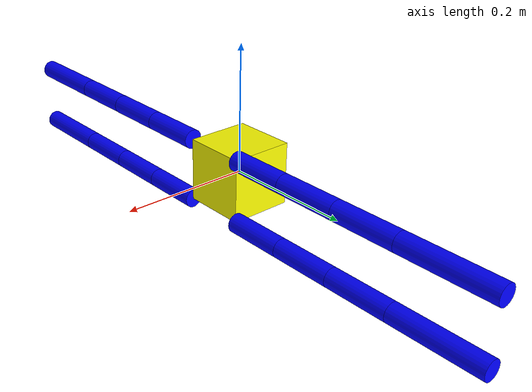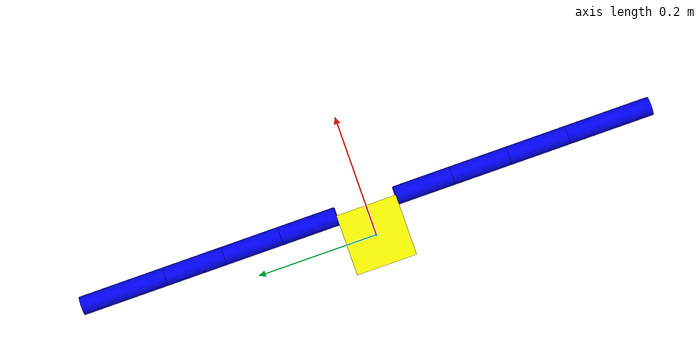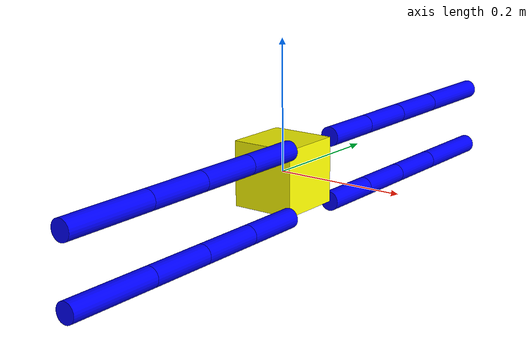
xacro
<?xml version="1.0"?>
<!-- 4limb type -->
<robot xmlns:xacro="http://ros.org/wiki/xacro" name="demo_robo" >
  <!-- The following included files set up definitions of parts of the robot body -->
  <!-- misc common stuff? -->
  <xacro:include filename="$(find gazebo_demo)/urdf/common.xacro" />
  <!-- material definition -->
  <xacro:include filename="$(find gazebo_demo)/urdf/material.urdf.xacro" />
  <!-- gazebo definition -->
  <xacro:include filename="$(find gazebo_demo)/gazebo/gazebo.urdf.xacro" />
  <!-- body definition -->
  <xacro:include filename="$(find gazebo_demo)/urdf/body/body.urdf.xacro" />
  <!-- limb definition -->
  <xacro:include filename="$(find gazebo_demo)/urdf/limb/limb.urdf.xacro" />
  <!-- end effector definition -->

  <!-- Now we can start using the macros included above to define our robot -->
  <xacro:common/>
  <!-- body and 8 limbs -->
  <link name="base_link"/>
  <xacro:BaseLinkToBody name_="body"/>
  <property name="lx" value="${0.098/2}"/>
  <property name="ly" value="${0.100/2}"/>
  <property name="lz" value="${0.100/2}"/>
  <xacro:link_limb4 limbNo="1" parent="body" px="+${lx}" py="+${ly}" pz="+${lz}" prow="-${M_PI/2}" ppit="0" pyaw="0"/>
  <xacro:link_limb4 limbNo="2" parent="body" px="+${lx}" py="-${ly}" pz="+${lz}" prow="-${M_PI/2}" ppit="0" pyaw="-${M_PI}"/>
  <xacro:link_limb4 limbNo="3" parent="body" px="+${lx}" py="+${ly}" pz="-${lz}" prow="-${M_PI/2}" ppit="0" pyaw="0"/>
  <xacro:link_limb4 limbNo="4" parent="body" px="+${lx}" py="-${ly}" pz="-${lz}" prow="-${M_PI/2}" ppit="0" pyaw="-${M_PI}"/>

  <!-- End Effector -->

  <xacro:ControlAndImu namespace="/demo_robo" imu_body="body"/>
</robot>

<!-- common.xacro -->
<robot xmlns:xacro="http://ros.org/wiki/xacro">
  <xacro:property name="M_PI" value="3.1415926535897931" />
  <xacro:property name="VELOCITY_LIMIT_SCALE" value="0.6" />

  <!-- motor information -->
  <xacro:property name="dx_lo" value="-${150*M_PI/180}" />
  <xacro:property name="dx_up" value="+${150*M_PI/180}" />
  <xacro:property name="dx_eff" value="3.621866" />
  <xacro:property name="dx_vel" value="7.016224" />

  <!-- Mathmatic -->
  <xacro:property name="Sin45" value="0.707106781"/>
  <xacro:property name="Cos45" value="0.707106781"/>

  <xacro:macro name="common">
  </xacro:macro>
</robot>

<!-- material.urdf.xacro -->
<robot xmlns:xacro="http://ros.org/wiki/xacro">
  <material name="Cyan">
    <color rgba="0.0 0.0 1.0 1.0"/>
  </material>

  <material name="Blue">
    <color rgba="0.0 0.0 0.8 1.0"/>
  </material>

  <material name="Green">
    <color rgba="0.0 0.8 0.0 1.0"/>
  </material>

  <material name="Red">
    <color rgba="0.8 0.0 0.0 1.0"/>
  </material>

  <material name="White">
    <color rgba="1.0 1.0 1.0 1.0"/>
  </material>

  <material name="Yellow">
    <color rgba="1.0 1.0 0.0 1.0"/>
  </material>

</robot>

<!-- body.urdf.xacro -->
<robot xmlns:xacro="http://ros.org/wiki/xacro">
  <xacro:include filename="$(find gazebo_demo)/urdf/body/body.gazebo.xacro"/>
  <xacro:include filename="$(find gazebo_demo)/urdf/body/body.transmission.xacro"/>
  <xacro:include filename="$(find gazebo_demo)/urdf/common.xacro"/>

  <!-- Geometry property for box -->
  <!-- body size -->
  <xacro:property name="b_x" value="0.100"/>
  <xacro:property name="b_y" value="0.100"/>
  <xacro:property name="b_z" value="0.100"/>
  <!-- body mass -->
  <xacro:property name="b_m" value="0.300"/>
  <!-- inertia tensol -->
  <xacro:property name="b_ixx" value="${(1/12)*b_m*(b_y*b_y+b_z*b_z)}"/>
  <xacro:property name="b_iyy" value="${(1/12)*b_m*(b_x*b_x+b_z*b_z)}"/>
  <xacro:property name="b_izz" value="${(1/12)*b_m*(b_x*b_x+b_y*b_y)}"/>
  <xacro:property name="b_ixy" value="0"/>
  <xacro:property name="b_ixz" value="0"/>
  <xacro:property name="b_iyz" value="0"/>

  <!-- ============= Body Description ============= -->
  <xacro:macro name="BaseLinkToBody" params="name_">
    <joint name="jointblTobody" type="fixed">
      <parent link="base_link"/>
      <child link="${name_}"/>
      <origin xyz="0 0 0" rpy="0 0 0"/>
    </joint>
    <!-- central body -->
    <link name="${name_}">
      <inertial>
        <origin xyz="0 0 0" rpy="0 0 0"/>
        <mass value="${b_m}"/>
        <inertia ixx="+${b_ixx}" ixy="-${b_ixy}" ixz="-${b_ixz}"
                                 iyy="+${b_iyy}" iyz="-${b_iyz}"
                                                 izz="+${b_izz}"/>
      </inertial>
      <visual>
        <origin xyz="0 0 0" rpy="0 0 0"/>
        <geometry>
          <box size="${b_x} ${b_y} ${b_z}"/>
        </geometry>
        <material name="Yellow"/>
      </visual>
      <collision>
        <origin xyz="0 0 0" rpy="0 0 0"/>
        <geometry>
          <box size="${b_x} ${b_y} ${b_z}"/>
        </geometry>
      </collision>
    </link>

    <xacro:BaseLinkToBody_gazebo name="${name_}" />
    <xacro:BaseLinkToBody_transmission name="${name_}" />
  </xacro:macro>
</robot>

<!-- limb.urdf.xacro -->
<!-- XML namespaces -->
<robot xmlns:xacro="http://ros.org/wiki/xacro">
  <xacro:include filename="$(find gazebo_demo)/urdf/limb/limb.gazebo.xacro"/>
  <xacro:include filename="$(find gazebo_demo)/urdf/limb/limb.transmission.xacro"/>
  <xacro:include filename="$(find gazebo_demo)/urdf/common.xacro"/>

  <!-- length and radius property of cylinder link of a limb -->
  <!-- link1 -->
  <xacro:property name="l1_length" value="0.094" />
  <xacro:property name="l1_radius" value="0.015" />
  <xacro:property name="l1_mass"   value="0.2"/>
  <xacro:property name="l1_ixx"    value="${(1/4)*l1_mass*l1_radius*l1_radius+(1/12)*l1_mass*l1_length*l1_length}"/>
  <xacro:property name="l1_iyy"    value="${(1/4)*l1_mass*l1_radius*l1_radius+(1/12)*l1_mass*l1_length*l1_length}"/>
  <xacro:property name="l1_izz"    value="${(1/2)*l1_mass*l1_radius*l1_radius}"/>
  <xacro:property name="l1_ixy"    value="0" />
  <xacro:property name="l1_ixz"    value="0" />
  <xacro:property name="l1_iyz"    value="0" />
  <!-- link2 -->
  <xacro:property name="l2_length" value="0.095" />
  <xacro:property name="l2_radius" value="0.015" />
  <xacro:property name="l2_mass"   value="0.2"/>
  <xacro:property name="l2_ixx"    value="${(1/4)*l2_mass*l2_radius*l2_radius+(1/12)*l2_mass*l2_length*l2_length}"/>
  <xacro:property name="l2_iyy"    value="${(1/4)*l2_mass*l2_radius*l2_radius+(1/12)*l2_mass*l2_length*l2_length}"/>
  <xacro:property name="l2_izz"    value="${(1/2)*l2_mass*l2_radius*l2_radius}"/>
  <xacro:property name="l2_ixy"    value="0" />
  <xacro:property name="l2_ixz"    value="0" />
  <xacro:property name="l2_iyz"    value="0" />
  <!-- link3 -->
  <xacro:property name="l3_length" value="0.099" />
  <xacro:property name="l3_radius" value="0.015" />
  <xacro:property name="l3_mass"   value="0.2"/>
  <xacro:property name="l3_ixx"    value="${(1/4)*l3_mass*l3_radius*l3_radius+(1/12)*l3_mass*l3_length*l3_length}"/>
  <xacro:property name="l3_iyy"    value="${(1/4)*l3_mass*l3_radius*l3_radius+(1/12)*l3_mass*l3_length*l3_length}"/>
  <xacro:property name="l3_izz"    value="${(1/2)*l3_mass*l3_radius*l3_radius}"/>
  <xacro:property name="l3_ixy"    value="0" />
  <xacro:property name="l3_ixz"    value="0" />
  <xacro:property name="l3_iyz"    value="0" />
  <!-- link4 -->
  <xacro:property name="l4_length" value="0.140" />
  <xacro:property name="l4_radius" value="0.015" />
  <xacro:property name="l4_mass"   value="0.2"/>
  <xacro:property name="l4_ixx"    value="${(1/4)*l4_mass*l4_radius*l4_radius+(1/12)*l4_mass*l4_length*l4_length}"/>
  <xacro:property name="l4_iyy"    value="${(1/4)*l4_mass*l4_radius*l4_radius+(1/12)*l4_mass*l4_length*l4_length}"/>
  <xacro:property name="l4_izz"    value="${(1/2)*l4_mass*l4_radius*l4_radius}"/>
  <xacro:property name="l4_ixy"    value="0" />
  <xacro:property name="l4_ixz"    value="0" />
  <xacro:property name="l4_iyz"    value="0" />

  <!-- ============= Limb Description ============= -->
  <xacro:macro name="link_limb4" params="limbNo parent px py pz prow ppit pyaw">
    <joint name="joint${limbNo}_01" type="revolute">
      <parent link="${parent}"/>
      <child link="link${limbNo}_1"/>
      <origin xyz="${px} ${py} ${pz}" rpy="${prow} ${ppit} ${pyaw}"/>
      <axis xyz="0 0 1"/>
      <limit lower="${dx_lo}" upper="${dx_up}" effort="${dx_eff}" velocity="${dx_vel}"/>
    </joint>
    <link name="link${limbNo}_1">
      <inertial>
        <origin xyz="0 0 ${l1_length/2}" rpy="0 0 0"/>
        <mass value="${l1_mass}"/>
        <inertia ixx="${l1_ixx}" ixy="-${l1_ixy}" ixz="-${l1_ixz}"
                        iyy="${l1_iyy}"  iyz="-${l1_iyz}"
                                    izz="${l1_izz}"/>
      </inertial>
      <visual>
        <origin xyz="0 0 ${l1_length/2}" rpy="0 0 0"/>
        <geometry>
          <cylinder radius="${l1_radius}" length="${l1_length}"/>
        </geometry>
        <material name="Cyan"/>
      </visual>
      <collision>
        <origin xyz="0 0 ${l1_length/2}" rpy="0 0 0"/>
        <geometry>
          <cylinder radius="${l1_radius}" length="${l1_length}"/>
        </geometry>
      </collision>
    </link>
    <joint name="joint${limbNo}_12" type="revolute">
      <parent link="link${limbNo}_1"/>
      <child link="link${limbNo}_2"/>
      <origin xyz="0 0 ${l1_length}" rpy="0 -${M_PI/2} +${M_PI/2}"/>
      <axis xyz="0 0 1"/>
      <limit lower="${dx_lo}" upper="${dx_up}" effort="${dx_eff}" velocity="${dx_vel}"/>
    </joint>
    <link name="link${limbNo}_2">
      <inertial>
        <origin xyz="${l2_length/2} 0 0" rpy="0 +${M_PI/2} 0"/>
        <mass value="${l2_mass}"/>
        <inertia ixx="${l2_ixx}" ixy="-${l2_ixy}" ixz="-${l2_ixz}"
                       iyy="${l2_iyy}"  iyz="-${l2_iyz}"
                                  izz="${l2_izz}"/>
      </inertial>
      <visual>
        <origin xyz="${l2_length/2} 0 0" rpy="0 +${M_PI/2} 0"/>
        <geometry>
          <cylinder radius="${l2_radius}" length="${l2_length}"/>
        </geometry>
        <material name="Cyan"/>
      </visual>
      <collision>
        <origin xyz="${l2_length/2} 0 0" rpy="0 +${M_PI/2} 0"/>
        <geometry>
          <cylinder radius="${l2_radius}" length="${l2_length}"/>
        </geometry>
      </collision>
    </link>
    <joint name="joint${limbNo}_23" type="revolute">
      <parent link="link${limbNo}_2"/>
      <child link="link${limbNo}_3"/>
      <origin xyz="${l2_length} 0 0" rpy="+${M_PI/2} 0 0"/>
      <axis xyz="0 0 1"/>
      <limit lower="${dx_lo}" upper="${dx_up}" effort="${dx_eff}" velocity="${dx_vel}"/>
    </joint>
    <link name="link${limbNo}_3">
      <inertial>
        <origin xyz="${l3_length/2} 0 0" rpy="0 +${M_PI/2} 0"/>
        <mass value="${l3_mass}"/>
        <inertia ixx="${l3_ixx}" ixy="-${l3_ixy}" ixz="-${l3_ixz}"
                     iyy="${l3_iyy}"  iyz="-${l3_iyz}"
                               izz="${l3_izz}"/>
      </inertial>
      <visual>
        <origin xyz="${l3_length/2} 0 0" rpy="0 +${M_PI/2} 0"/>
        <geometry>
          <cylinder radius="${l3_radius}" length="${l3_length}"/>
        </geometry>
        <material name="Cyan"/>
      </visual>
      <collision>
        <origin xyz="${l3_length/2} 0 0" rpy="0 +${M_PI/2} 0"/>
        <geometry>
          <cylinder radius="${l3_radius}" length="${l3_length}"/>
        </geometry>
      </collision>
    </link>
    <joint name="joint${limbNo}_34" type="revolute">
      <parent link="link${limbNo}_3"/>
      <child link="link${limbNo}_4"/>
      <origin xyz="${l3_length} 0 0" rpy="0 0 0"/>
      <axis xyz="0 0 1"/>
      <limit lower="${dx_lo}" upper="${dx_up}" effort="${dx_eff}" velocity="${dx_vel}"/>
    </joint>
    <link name="link${limbNo}_4">
      <inertial>
        <origin xyz="${l4_length/2} 0 0" rpy="0 +${M_PI/2} 0"/>
        <mass value="${l4_mass}"/>
        <inertia ixx="${l4_ixx}" ixy="-${l4_ixy}" ixz="-${l4_ixz}"
                     iyy="${l4_iyy}"  iyz="-${l4_iyz}"
                               izz="${l4_izz}"/>
      </inertial>
      <visual>
        <origin xyz="${l4_length/2} 0 0" rpy="0 +${M_PI/2} 0"/>
        <geometry>
          <cylinder radius="${l4_radius}" length="${l4_length}"/>
        </geometry>
        <material name="Cyan"/>
      </visual>
      <collision>
        <origin xyz="${l4_length/2} 0 0" rpy="0 +${M_PI/2} 0"/>
        <geometry>
          <cylinder radius="${l4_radius}" length="${l4_length}"/>
        </geometry>
      </collision>
    </link>

    <xacro:limb4_gazebo limbNo_g="${limbNo}" />
    <xacro:limb4_transmission limbNo_t="${limbNo}" />
  </xacro:macro>
</robot>
